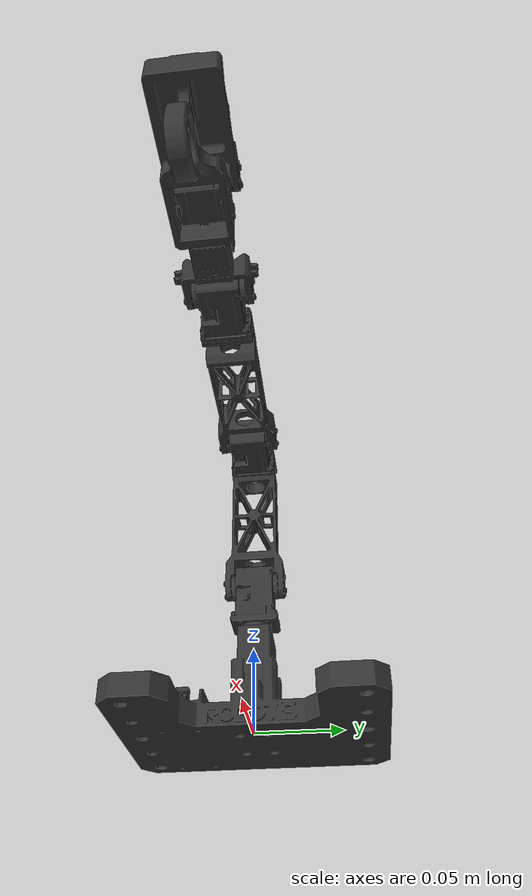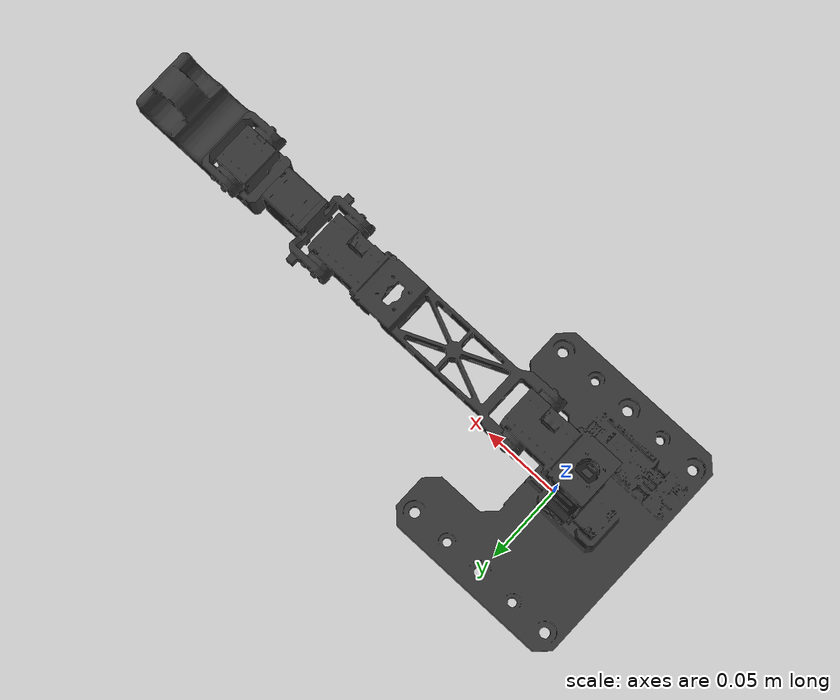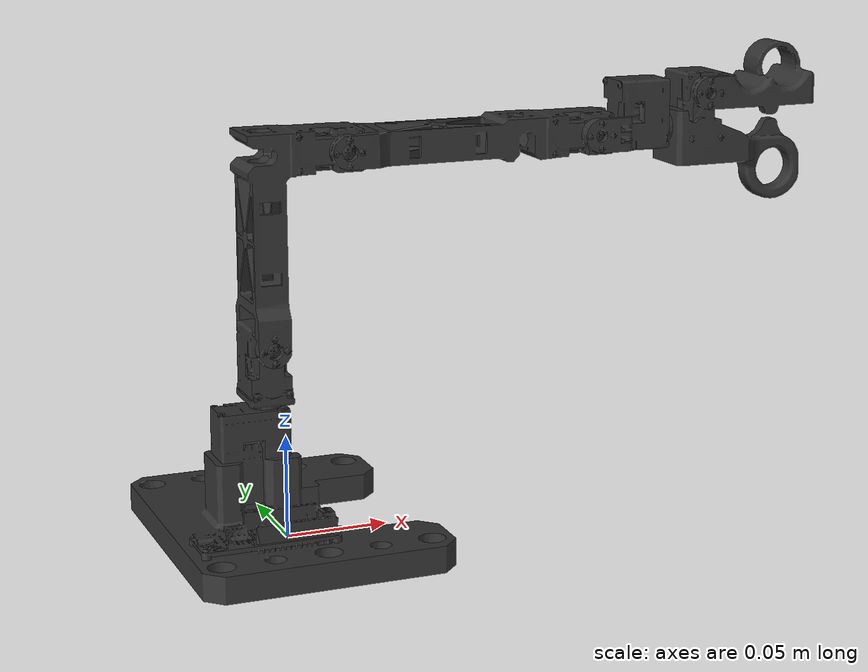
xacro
<?xml version="1.0"?>
<robot name="omx_l" xmlns:xacro="http://www.ros.org/wiki/xacro">
  <xacro:arg name="prefix" default="" />
  <xacro:arg name="use_sim" default="false" />
  <xacro:arg name="use_fake_hardware" default="false" />
  <xacro:arg name="fake_sensor_commands" default="false" />
  <xacro:arg name="port_name" default="/dev/ttyACM1" />
  <xacro:arg name="ros2_control_type" default="omx_l" />

  <xacro:include filename="$(find open_manipulator_description)/urdf/omx_l/omx_l_arm.urdf.xacro" />

  <xacro:include filename="$(find open_manipulator_description)/gazebo/omx_l.gazebo.xacro" />

  <xacro:include filename="$(find open_manipulator_description)/ros2_control/$(arg ros2_control_type).ros2_control.xacro" />

  <link name="world"/>

  <joint name="$(arg prefix)world_fixed" type="fixed">
    <parent link="world"/>
    <child link="$(arg prefix)link0"/>
    <origin xyz="0.0 0.0 0.0" rpy="0 0 0"/>
  </joint>

  <xacro:omx_l prefix="$(arg prefix)" />
  <xacro:omx_l_gazebo prefix="$(arg prefix)" />

  <xacro:omx_l_system
    name="OMXLEADERSYSTEM" prefix="$(arg prefix)" use_sim="$(arg use_sim)"
    use_fake_hardware="$(arg use_fake_hardware)"
    fake_sensor_commands="$(arg fake_sensor_commands)"
    port_name="$(arg port_name)"/>

  <gazebo>
    <plugin filename="gz_ros2_control-system" name="gz_ros2_control::GazeboSimROS2ControlPlugin">
      <parameters>$(find open_manipulator_bringup)/config/omx_l_leader/hardware_controller_manager.yaml</parameters>
    </plugin>
  </gazebo>

</robot>

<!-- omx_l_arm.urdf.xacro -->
<robot xmlns:xacro="http://www.ros.org/wiki/xacro">
   <xacro:macro name="omx_l" params="prefix">
   <xacro:property name="meshes_file_direction" value="package://open_manipulator_description/meshes/omx_l/" />
      <link name="${prefix}link0" >
         <visual>
            <origin xyz="0 0 0" rpy="0 0 0" />
            <geometry>
               <mesh filename="${meshes_file_direction}/leader_01_base_roll.stl" scale="0.001 0.001 0.001" />
            </geometry>
            <material name="grey">
               <color rgba="0.2 0.2 0.2 1" />
            </material>
         </visual>
         <collision>
            <origin xyz="0 0 0" rpy="0 0 0" />
            <geometry>
               <mesh filename="${meshes_file_direction}/leader_01_base_roll.stl" scale="0.001 0.001 0.001" />
            </geometry>
            <material name="grey">
               <color rgba="0.2 0.2 0.2 1" />
            </material>
         </collision>
         <inertial>
            <origin xyz="-1.238633200e-02 -5.447235500e-03 1.744509700e-02" />
            <mass value="1.451075000e-01" />
            <inertia ixx="2.628250300e-04" ixy="-5.614281600e-06" ixz="7.685931300e-06"
            iyy="1.477645100e-04" iyz="1.937324800e-06"
            izz="3.204220800e-04" />
         </inertial>
      </link>
      <joint name="${prefix}joint1" type="revolute">
         <parent link="${prefix}link0" />
         <child link="${prefix}link1" />
         <origin xyz="-0.0095 0 0.0545" rpy="0 0 0" />
         <axis xyz="0 0 1" />
         <limit velocity="4.8" effort="1000" lower="${-pi*2.0}" upper="${pi*2.0}" />
         <dynamics damping="0.05" />
      </joint>
      <link name="${prefix}link1" >
         <visual>
            <origin xyz="0 0 0" rpy="0 0 0" />
            <geometry>
               <mesh filename="${meshes_file_direction}/leader_02_base_tilt_revised.stl" scale="0.001 0.001 0.001" />
            </geometry>
            <material name="grey">
               <color rgba="0.2 0.2 0.2 1" />
            </material>
         </visual>
         <collision>
            <origin xyz="0 0 0" rpy="0 0 0" />
            <geometry>
               <mesh filename="${meshes_file_direction}/leader_02_base_tilt_revised.stl" scale="0.001 0.001 0.001" />
            </geometry>
            <material name="grey">
               <color rgba="0.2 0.2 0.2 1" />
            </material>
         </collision>
         <inertial>
            <origin xyz="2.835039900e-05 2.751132400e-04 3.128092400e-02" />
            <mass value="2.527095100e-02" />
            <inertia ixx="4.407733000e-06" ixy="-5.103192400e-11" ixz="2.755486200e-09"
            iyy="4.218083500e-06" iyz="-1.016729100e-08"
            izz="1.868043300e-06" />
         </inertial>
      </link>
      <joint name="${prefix}joint2" type="revolute">
         <parent link="${prefix}link1" />
         <child link="${prefix}link2" />
         <origin xyz="0 0 0.042" rpy="0 0 0" />
         <axis xyz="0 1 0" />
         <limit velocity="4.8" effort="1000" lower="${-pi*2.0}" upper="${pi*2.0}" />
         <dynamics damping="0.1" />
      </joint>
      <link name="${prefix}link2" >
         <visual>
            <origin xyz="0 0 0" rpy="0 0 0" />
            <geometry>
               <mesh filename="${meshes_file_direction}/leader_03_middle_vertical.stl" scale="0.001 0.001 0.001" />
            </geometry>
            <material name="grey">
               <color rgba="0.2 0.2 0.2 1" />
            </material>
         </visual>
         <collision>
            <origin xyz="0 0 0" rpy="0 0 0" />
            <geometry>
               <mesh filename="${meshes_file_direction}/leader_03_middle_vertical.stl" scale="0.001 0.001 0.001" />
            </geometry>
            <material name="grey">
               <color rgba="0.2 0.2 0.2 1" />
            </material>
         </collision>
         <inertial>
            <origin xyz="1.424917700e-02 1.724114700e-04 6.876064000e-02" />
            <mass value="4.770623100e-02" />
            <inertia ixx="5.756046900e-05" ixy="-7.916400900e-08" ixz="-1.442184500e-05"
            iyy="6.581561500e-05" iyz="-5.987367400e-08"
            izz="1.652415800e-05" />
         </inertial>
      </link>
      <joint name="${prefix}joint3" type="revolute">
         <parent link="${prefix}link2" />
         <child link="${prefix}link3" />
          <origin xyz="0.0375 0 0.09" rpy="0 0 0" />
         <axis xyz="0 1 0" />
         <limit velocity="4.8" effort="1000" lower="${-pi*2.0}" upper="${pi*2.0}" />
         <dynamics damping="0.1" />
      </joint>
      <link name="${prefix}link3" >
         <visual>
            <origin xyz="0 0 0" rpy="0 0 0" />
            <geometry>
               <mesh filename="${meshes_file_direction}/leader_04_middle_horizontal.stl" scale="0.001 0.001 0.001" />
            </geometry>
            <material name="grey">
               <color rgba="0.2 0.2 0.2 1" />
            </material>
         </visual>
         <collision>
            <origin xyz="0 0 0" rpy="0 0 0" />
            <geometry>
               <mesh filename="${meshes_file_direction}/leader_04_middle_horizontal.stl" scale="0.001 0.001 0.001" />
            </geometry>
            <material name="grey">
               <color rgba="0.2 0.2 0.2 1" />
            </material>
         </collision>
         <inertial>
            <origin xyz="8.282742400e-02 1.724150100e-04 1.823923200e-04" />
            <mass value="4.770623100e-02" />
            <inertia ixx="5.604141500e-06" ixy="-1.407750000e-07" ixz="-4.627927600e-08"
            iyy="9.456674600e-05" iyz="1.755014700e-09"
            izz="9.723161700e-05" />
         </inertial>
      </link>
      <joint name="${prefix}joint4" type="revolute">
         <parent link="${prefix}link3" />
         <child link="${prefix}link4" />
         <origin xyz="0.1275 0 0" rpy="0 0 0" />
         <axis xyz="0 1 0" />
         <limit velocity="4.8" effort="1000" lower="${-pi*2.0}" upper="${pi*2.0}" />
         <dynamics damping="0.1" />
      </joint>
      <link name="${prefix}link4" >
         <visual>
            <origin xyz="0 0 0" rpy="0 0 0" />
            <geometry>
               <mesh filename="${meshes_file_direction}/leader_05_tip_roll.stl" scale="0.001 0.001 0.001" />
            </geometry>
            <material name="grey">
               <color rgba="0.2 0.2 0.2 1" />
            </material>
         </visual>
         <collision>
            <origin xyz="0 0 0" rpy="0 0 0" />
            <geometry>
               <mesh filename="${meshes_file_direction}/leader_05_tip_roll.stl" scale="0.001 0.001 0.001" />
            </geometry>
            <material name="grey">
               <color rgba="0.2 0.2 0.2 1" />
            </material>
         </collision>
         <inertial>
            <origin xyz="2.226281200e-02 6.543368700e-05 5.886435800e-03" />
            <mass value="3.043181200e-02" />
            <inertia ixx="5.235858000e-06" ixy="2.348720300e-08" ixz="-9.501811500e-07"
            iyy="7.464600400e-06" iyz="1.225658100e-09"
            izz="6.780770900e-06" />
         </inertial>
      </link>
      <joint name="${prefix}joint5" type="revolute">
         <parent link="${prefix}link4" />
         <child link="${prefix}link5" />
         <origin xyz="0.0287 0 0" rpy="0 0 0" />
         <axis xyz="1 0 0" />
         <limit velocity="4.8" effort="1000" lower="${-pi*2.0}" upper="${pi*2.0}" />
         <dynamics damping="0.1" />
      </joint>
      <link name="${prefix}link5" >
         <visual>
            <origin xyz="0 0 0" rpy="0 0 0" />
            <geometry>
               <mesh filename="${meshes_file_direction}/leader_06_tip_pan_revised.stl" scale="0.001 0.001 0.001" />
            </geometry>
            <material name="grey">
               <color rgba="0.2 0.2 0.2 1" />
            </material>
         </visual>
         <collision>
            <origin xyz="0 0 0" rpy="0 0 0" />
            <geometry>
               <mesh filename="${meshes_file_direction}/leader_06_tip_pan_revised.stl" scale="0.001 0.001 0.001" />
            </geometry>
            <material name="grey">
               <color rgba="0.2 0.2 0.2 1" />
            </material>
         </collision>
         <inertial>
            <origin xyz="3.612422300e-02 2.809335000e-04 2.357443900e-05" />
            <mass value="3.962965900e-02" />
            <inertia ixx="1.056164100e-05" ixy="7.001923500e-08" ixz="6.009266300e-06"
            iyy="2.169751100e-05" iyz="-9.883190500e-08"
            izz="1.515746000e-05" />
         </inertial>
      </link>
      <joint name="${prefix}gripper_joint_1" type="revolute">
         <parent link="${prefix}link5" />
         <child link="${prefix}link6" />
         <origin xyz="0.0298 0 0.0175" rpy="0 0 0" />
         <axis xyz="0 1 0" />
         <limit velocity="4.8" effort="1000" lower="${-pi*2.0}" upper="${pi*2.0}" />
         <dynamics damping="0.1" />
      </joint>
      <link name="${prefix}link6" >
         <visual>
            <origin xyz="0 0 0" rpy="0 0 0" />
            <geometry>
               <mesh filename="${meshes_file_direction}/leader_07_tip_grip.stl" scale="0.001 0.001 0.001" />
            </geometry>
            <material name="grey">
               <color rgba="0.2 0.2 0.2 1" />
            </material>
         </visual>
         <collision>
            <origin xyz="0 0 0" rpy="0 0 0" />
            <geometry>
               <mesh filename="${meshes_file_direction}/leader_07_tip_grip.stl" scale="0.001 0.001 0.001" />
            </geometry>
            <material name="grey">
               <color rgba="0.2 0.2 0.2 1" />
            </material>
         </collision>
         <inertial>
            <origin xyz="2.848595800e-02 3.991033600e-05 3.499505900e-04" />
            <mass value="1.961145500e-02" />
            <inertia ixx="3.344745100e-06" ixy="4.387081200e-08" ixz="-2.497067000e-07"
            iyy="9.040789400e-06" iyz="-3.092786900e-09"
            izz="1.102437500e-05" />
         </inertial>
      </link>
   </xacro:macro>
</robot>
